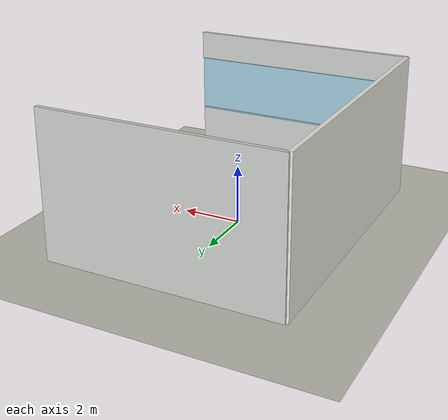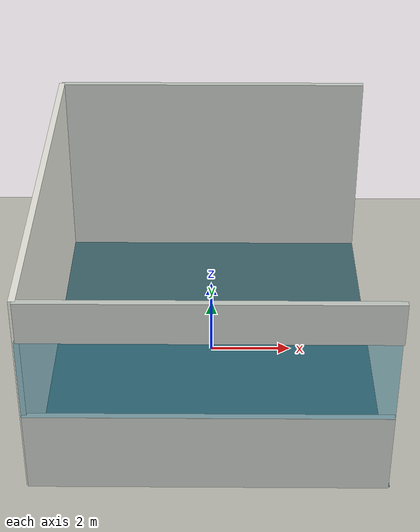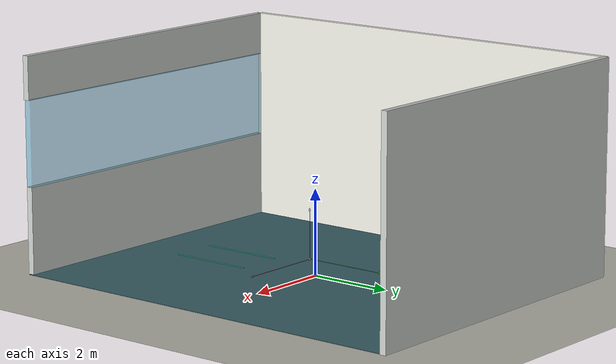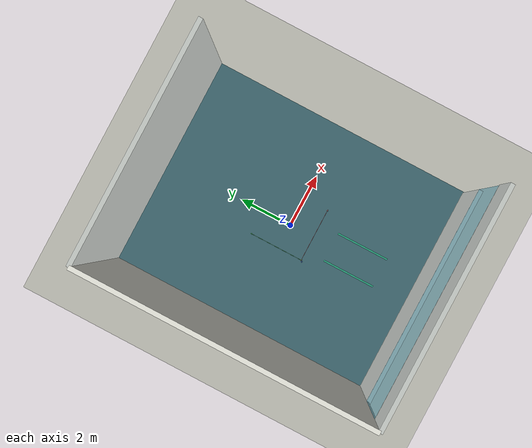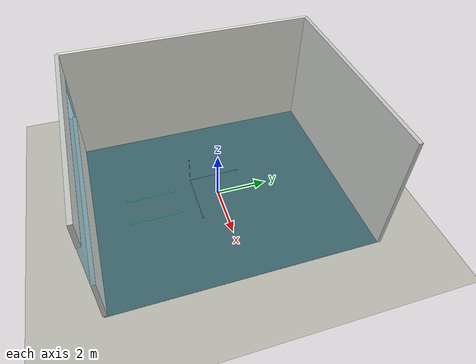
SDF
<sdf version="1.10">
 <world name="laboratory_landingbox_vla_task0">
  <model name="debug_world_axes">
   <static>true</static>
   <pose>-0.92000000000000004 -0.92000000000000004 0 0 0 0</pose>
   <link name="axes_link">
    <visual name="origin_dot">
     <pose>0 0 0.055 0 0 0</pose>
     <geometry><sphere><radius>0.028000000000000001</radius></sphere></geometry>
     <material>
      <ambient>0.75 0.649999976 0.150000006 0.550000012</ambient>
      <diffuse>0.75 0.649999976 0.150000006 0.550000012</diffuse>
      <emissive>0.0799999982 0.0599999987 0 1</emissive>
     </material>
     <transparency>0.10000000000000001</transparency>
     <cast_shadows>false</cast_shadows>
    </visual>
    <visual name="x_axis_red_line">
     <pose>1 0 0.055 3.1415926535897931 1.5707926536359933 3.1415926535897931</pose>
     <geometry><cylinder><radius>0.0060000000000000001</radius><length>2</length></cylinder></geometry>
     <material>
      <ambient>0.75 0.100000001 0.100000001 0.449999988</ambient>
      <diffuse>0.75 0.100000001 0.100000001 0.449999988</diffuse>
      <emissive>0.0399999991 0 0 1</emissive>
     </material>
     <transparency>0.10000000000000001</transparency>
     <cast_shadows>false</cast_shadows>
    </visual>
    <visual name="x_axis_tip">
     <pose>2.04 0 0.055 3.1415926535897931 1.5707926536359933 3.1415926535897931</pose>
     <geometry><cone><radius>0.025999999999999999</radius><length>0.080000000000000002</length></cone></geometry>
     <material>
      <ambient>0.75 0.100000001 0.100000001 0.449999988</ambient>
      <diffuse>0.75 0.100000001 0.100000001 0.449999988</diffuse>
      <emissive>0.0399999991 0 0 1</emissive>
     </material>
     <transparency>0.10000000000000001</transparency>
     <cast_shadows>false</cast_shadows>
    </visual>
    <visual name="y_axis_green_line">
     <pose>0 1 0.065000000000000002 -1.5708 0 0</pose>
     <geometry><cylinder><radius>0.0060000000000000001</radius><length>2</length></cylinder></geometry>
     <material>
      <ambient>0.100000001 0.649999976 0.100000001 0.449999988</ambient>
      <diffuse>0.100000001 0.649999976 0.100000001 0.449999988</diffuse>
      <emissive>0 0.0399999991 0 1</emissive>
     </material>
     <transparency>0.10000000000000001</transparency>
     <cast_shadows>false</cast_shadows>
    </visual>
    <visual name="y_axis_tip">
     <pose>0 2.04 0.065000000000000002 -1.5708 0 0</pose>
     <geometry><cone><radius>0.025999999999999999</radius><length>0.080000000000000002</length></cone></geometry>
     <material>
      <ambient>0.100000001 0.649999976 0.100000001 0.449999988</ambient>
      <diffuse>0.100000001 0.649999976 0.100000001 0.449999988</diffuse>
      <emissive>0 0.0399999991 0 1</emissive>
     </material>
     <transparency>0.10000000000000001</transparency>
     <cast_shadows>false</cast_shadows>
    </visual>
    <visual name="z_axis_blue_line">
     <pose>0 0 0.59999999999999998 0 0 0</pose>
     <geometry><cylinder><radius>0.0060000000000000001</radius><length>1.2</length></cylinder></geometry>
     <material>
      <ambient>0.100000001 0.200000003 0.800000012 0.449999988</ambient>
      <diffuse>0.100000001 0.200000003 0.800000012 0.449999988</diffuse>
      <emissive>0 0 0.0500000007 1</emissive>
     </material>
     <transparency>0.10000000000000001</transparency>
     <cast_shadows>false</cast_shadows>
    </visual>
    <visual name="z_axis_tip">
     <pose>0 0 1.24 0 0 0</pose>
     <geometry><cone><radius>0.025999999999999999</radius><length>0.080000000000000002</length></cone></geometry>
     <material>
      <ambient>0.100000001 0.200000003 0.800000012 0.449999988</ambient>
      <diffuse>0.100000001 0.200000003 0.800000012 0.449999988</diffuse>
      <emissive>0 0 0.0500000007 1</emissive>
     </material>
     <transparency>0.10000000000000001</transparency>
     <cast_shadows>false</cast_shadows>
    </visual>
    <inertial>
     <mass>1</mass>
     <inertia><ixx>1</ixx><ixy>0</ixy><ixz>0</ixz><iyy>1</iyy><iyz>0</iyz><izz>1</izz></inertia>
    </inertial>
   </link>
  </model>
  <model name="ground_plane">
   <static>true</static>
   <link name="link">
    <collision name="collision">
     <geometry><plane><normal>0 0 1</normal><size>500 500</size></plane></geometry>
     <surface><friction><ode><mu>100</mu><mu2>50</mu2></ode></friction></surface>
    </collision>
    <visual name="visual">
     <geometry><plane><normal>0 0 1</normal><size>500 500</size></plane></geometry>
     <material>
      <ambient>0.74000001 0.74000001 0.699999988 1</ambient>
      <diffuse>0.74000001 0.74000001 0.699999988 1</diffuse>
      <specular>0.0500000007 0.0500000007 0.0500000007 1</specular>
     </material>
    </visual>
    <inertial>
     <mass>1</mass>
     <inertia><ixx>1</ixx><ixy>0</ixy><ixz>0</ixz><iyy>1</iyy><iyz>0</iyz><izz>1</izz></inertia>
    </inertial>
   </link>
  </model>
  <model name="window">
   <link name="link_2">
    <pose>-3.6558600000000001 -0.020996999999999998 0.36152899999999999 0 0 0</pose>
    <inertial>
     <mass>1</mass>
     <inertia><ixx>1</ixx><ixy>0</ixy><ixz>0</ixz><iyy>1</iyy><iyz>0</iyz><izz>1</izz></inertia>
    </inertial>
    <visual name="visual">
     <pose>0 0 0.90000000000000002 0 0 0</pose>
     <geometry><box><size>8 0.14999999999999999 2</size></box></geometry>
     <material>
      <lighting>true</lighting>
      <ambient>0.200000003 0.5 0.600000024 0.699999988</ambient>
      <diffuse>0.219999999 0.620000005 0.75 0.699999988</diffuse>
      <specular>0.180000007 0.180000007 0.180000007 1</specular>
      <emissive>0.0199999996 0.0599999987 0.0799999982 1</emissive>
     </material>
     <transparency>0.55000000000000004</transparency>
    </visual>
    <collision name="collision">
     <pose>0 0 0.90000000000000002 0 0 0</pose>
     <geometry><box><size>8 0.14999999999999999 2</size></box></geometry>
     <surface>
      <friction>
       <ode><mu>1</mu><mu2>1</mu2><fdir1>0 0 0</fdir1><slip1>0</slip1><slip2>0</slip2></ode>
       <torsional>
        <coefficient>1</coefficient>
        <patch_radius>0</patch_radius>
        <surface_radius>0</surface_radius>
        <use_patch_radius>true</use_patch_radius>
        <ode><slip>0</slip></ode>
       </torsional>
      </friction>
      <bounce><restitution_coefficient>0</restitution_coefficient><threshold>1000000</threshold></bounce>
      <contact>
       <collide_without_contact>false</collide_without_contact>
       <collide_without_contact_bitmask>1</collide_without_contact_bitmask>
       <collide_bitmask>1</collide_bitmask>
       <ode>
        <soft_cfm>0</soft_cfm>
        <soft_erp>0.20000000000000001</soft_erp>
        <kp>10000000000000</kp>
        <kd>1</kd>
        <max_vel>0.01</max_vel>
        <min_depth>0</min_depth>
       </ode>
       <bullet>
        <split_impulse>true</split_impulse>
        <split_impulse_penetration_threshold>-0.01</split_impulse_penetration_threshold>
        <soft_cfm>0</soft_cfm>
        <soft_erp>0.20000000000000001</soft_erp>
        <kp>10000000000000</kp>
        <kd>1</kd>
       </bullet>
      </contact>
     </surface>
    </collision>
   </link>
   <static>true</static>
   <pose>3.62277 -4.97689 1.7565 0 0 0</pose>
  </model>
  <model name="Workshop">
   <link name="Wall_10">
    <pose>-2.5053000000000001 2.09449 2 0 0 -1.5708</pose>
    <inertial>
     <mass>1</mass>
     <inertia><ixx>1</ixx><ixy>0</ixy><ixz>0</ixz><iyy>1</iyy><iyz>0</iyz><izz>1</izz></inertia>
    </inertial>
    <visual name="Wall_10_Visual">
     <pose>0 0 0.5 0 0 0</pose>
     <geometry><box><size>10 0.14999999999999999 5</size></box></geometry>
     <material>
      <ambient>0.879999995 0.879999995 0.839999974 1</ambient>
      <diffuse>0.920000017 0.920000017 0.879999995 1</diffuse>
      <specular>0.0199999996 0.0199999996 0.0199999996 1</specular>
      <emissive>0 0 0 1</emissive>
     </material>
    </visual>
    <collision name="Wall_10_Collision">
     <pose>0 0 0.5 0 0 0</pose>
     <geometry><box><size>10 0.14999999999999999 5</size></box></geometry>
     <surface>
      <friction>
       <ode><mu>1</mu><mu2>1</mu2><fdir1>0 0 0</fdir1><slip1>0</slip1><slip2>0</slip2></ode>
       <torsional>
        <coefficient>1</coefficient>
        <patch_radius>0</patch_radius>
        <surface_radius>0</surface_radius>
        <use_patch_radius>true</use_patch_radius>
        <ode><slip>0</slip></ode>
       </torsional>
      </friction>
      <bounce><restitution_coefficient>0</restitution_coefficient><threshold>1000000</threshold></bounce>
      <contact>
       <collide_without_contact>false</collide_without_contact>
       <collide_without_contact_bitmask>1</collide_without_contact_bitmask>
       <collide_bitmask>1</collide_bitmask>
       <ode>
        <soft_cfm>0</soft_cfm>
        <soft_erp>0.20000000000000001</soft_erp>
        <kp>10000000000000</kp>
        <kd>1</kd>
        <max_vel>0.01</max_vel>
        <min_depth>0</min_depth>
       </ode>
       <bullet>
        <split_impulse>true</split_impulse>
        <split_impulse_penetration_threshold>-0.01</split_impulse_penetration_threshold>
        <soft_cfm>0</soft_cfm>
        <soft_erp>0.20000000000000001</soft_erp>
        <kp>10000000000000</kp>
        <kd>1</kd>
       </bullet>
      </contact>
     </surface>
    </collision>
   </link>
   <link name="Wall_11">
    <pose>1.4613100000000037 -2.9050699999999958 0.51611300000000004 0 0 3.1415900000000008</pose>
    <inertial>
     <inertia><ixx>1</ixx><ixy>0</ixy><ixz>0</ixz><iyy>1</iyy><iyz>0</iyz><izz>1</izz></inertia>
     <mass>1</mass>
    </inertial>
    <visual name="Wall_11_Visual">
     <pose>0 0 0.5 0 0 0</pose>
     <geometry><box><size>8 0.14999999999999999 2</size></box></geometry>
     <material>
      <ambient>0.720000029 0.74000001 0.720000029 1</ambient>
      <emissive>0 0 0 1</emissive>
      <diffuse>0.779999971 0.800000012 0.779999971 1</diffuse>
      <specular>0.0199999996 0.0199999996 0.0199999996 1</specular>
     </material>
    </visual>
    <collision name="Wall_11_Collision">
     <pose>0 0 0.5 0 0 0</pose>
     <geometry><box><size>8 0.14999999999999999 2</size></box></geometry>
     <surface>
      <friction>
       <ode><mu>1</mu><mu2>1</mu2><fdir1>0 0 0</fdir1><slip1>0</slip1><slip2>0</slip2></ode>
       <torsional>
        <coefficient>1</coefficient>
        <patch_radius>0</patch_radius>
        <surface_radius>0</surface_radius>
        <use_patch_radius>true</use_patch_radius>
        <ode><slip>0</slip></ode>
       </torsional>
      </friction>
      <bounce><restitution_coefficient>0</restitution_coefficient><threshold>1000000</threshold></bounce>
      <contact>
       <collide_without_contact>false</collide_without_contact>
       <collide_without_contact_bitmask>1</collide_without_contact_bitmask>
       <collide_bitmask>1</collide_bitmask>
       <ode>
        <soft_cfm>0</soft_cfm>
        <soft_erp>0.20000000000000001</soft_erp>
        <kp>10000000000000</kp>
        <kd>1</kd>
        <max_vel>0.01</max_vel>
        <min_depth>0</min_depth>
       </ode>
       <bullet>
        <split_impulse>true</split_impulse>
        <split_impulse_penetration_threshold>-0.01</split_impulse_penetration_threshold>
        <soft_cfm>0</soft_cfm>
        <soft_erp>0.20000000000000001</soft_erp>
        <kp>10000000000000</kp>
        <kd>1</kd>
       </bullet>
      </contact>
     </surface>
    </collision>
   </link>
   <link name="Wall_11_clone">
    <pose>1.4947000000000032 -2.905509999999996 4 0 0 3.1415900000000008</pose>
    <inertial>
     <inertia><ixx>1</ixx><ixy>0</ixy><ixz>0</ixz><iyy>1</iyy><iyz>0</iyz><izz>1</izz></inertia>
     <mass>1</mass>
    </inertial>
    <visual name="Wall_11_Visual">
     <pose>0 0 0.5 0 0 0</pose>
     <geometry><box><size>8 0.14999999999999999 1</size></box></geometry>
     <material>
      <ambient>0.720000029 0.74000001 0.720000029 1</ambient>
      <emissive>0 0 0 1</emissive>
      <diffuse>0.779999971 0.800000012 0.779999971 1</diffuse>
      <specular>0.0199999996 0.0199999996 0.0199999996 1</specular>
     </material>
    </visual>
    <collision name="Wall_11_Collision">
     <pose>0 0 0.5 0 0 0</pose>
     <geometry><box><size>7.7121700000000004 0.14999999999999999 1</size></box></geometry>
     <surface>
      <friction>
       <ode><mu>1</mu><mu2>1</mu2><fdir1>0 0 0</fdir1><slip1>0</slip1><slip2>0</slip2></ode>
       <torsional>
        <coefficient>1</coefficient>
        <patch_radius>0</patch_radius>
        <surface_radius>0</surface_radius>
        <use_patch_radius>true</use_patch_radius>
        <ode><slip>0</slip></ode>
       </torsional>
      </friction>
      <bounce><restitution_coefficient>0</restitution_coefficient><threshold>1000000</threshold></bounce>
      <contact>
       <collide_without_contact>false</collide_without_contact>
       <collide_without_contact_bitmask>1</collide_without_contact_bitmask>
       <collide_bitmask>1</collide_bitmask>
       <ode>
        <soft_cfm>0</soft_cfm>
        <soft_erp>0.20000000000000001</soft_erp>
        <kp>10000000000000</kp>
        <kd>1</kd>
        <max_vel>0.01</max_vel>
        <min_depth>0</min_depth>
       </ode>
       <bullet>
        <split_impulse>true</split_impulse>
        <split_impulse_penetration_threshold>-0.01</split_impulse_penetration_threshold>
        <soft_cfm>0</soft_cfm>
        <soft_erp>0.20000000000000001</soft_erp>
        <kp>10000000000000</kp>
        <kd>1</kd>
       </bullet>
      </contact>
     </surface>
    </collision>
   </link>
   <link name="Wall_13">
    <pose>1.4946999999999955 7.0944900000000031 2 0 0 3.1415900000000008</pose>
    <inertial>
     <mass>1</mass>
     <inertia><ixx>1</ixx><ixy>0</ixy><ixz>0</ixz><iyy>1</iyy><iyz>0</iyz><izz>1</izz></inertia>
    </inertial>
    <visual name="Wall_13_Visual">
     <pose>0 0 0.5 0 0 0</pose>
     <geometry><box><size>8 0.14999999999999999 5</size></box></geometry>
     <material>
      <ambient>0.720000029 0.74000001 0.720000029 1</ambient>
      <diffuse>0.779999971 0.800000012 0.779999971 1</diffuse>
      <specular>0.0199999996 0.0199999996 0.0199999996 1</specular>
      <emissive>0 0 0 1</emissive>
     </material>
    </visual>
    <collision name="Wall_13_Collision">
     <pose>0 0 0.5 0 0 0</pose>
     <geometry><box><size>8 0.14999999999999999 5</size></box></geometry>
     <surface>
      <friction>
       <ode><mu>1</mu><mu2>1</mu2><fdir1>0 0 0</fdir1><slip1>0</slip1><slip2>0</slip2></ode>
       <torsional>
        <coefficient>1</coefficient>
        <patch_radius>0</patch_radius>
        <surface_radius>0</surface_radius>
        <use_patch_radius>true</use_patch_radius>
        <ode><slip>0</slip></ode>
       </torsional>
      </friction>
      <bounce><restitution_coefficient>0</restitution_coefficient><threshold>1000000</threshold></bounce>
      <contact>
       <collide_without_contact>false</collide_without_contact>
       <collide_without_contact_bitmask>1</collide_without_contact_bitmask>
       <collide_bitmask>1</collide_bitmask>
       <ode>
        <soft_cfm>0</soft_cfm>
        <soft_erp>0.20000000000000001</soft_erp>
        <kp>10000000000000</kp>
        <kd>1</kd>
        <max_vel>0.01</max_vel>
        <min_depth>0</min_depth>
       </ode>
       <bullet>
        <split_impulse>true</split_impulse>
        <split_impulse_penetration_threshold>-0.01</split_impulse_penetration_threshold>
        <soft_cfm>0</soft_cfm>
        <soft_erp>0.20000000000000001</soft_erp>
        <kp>10000000000000</kp>
        <kd>1</kd>
       </bullet>
      </contact>
     </surface>
    </collision>
   </link>
   <link name="link_0">
    <inertial>
     <mass>1</mass>
     <inertia>
      <ixx>0.16666700000000001</ixx>
      <ixy>0</ixy>
      <ixz>0</ixz>
      <iyy>0.16666700000000001</iyy>
      <iyz>0</iyz>
      <izz>0.16666700000000001</izz>
     </inertia>
    </inertial>
    <pose>1.4928199999999996 2.0619100000000032 0.012848 0 0 -1.5707999999999998</pose>
    <visual name="visual">
     <geometry><box><size>10 8 0.012999999999999999</size></box></geometry>
     <material>
      <lighting>true</lighting>
      <ambient>0.200000003 0.330000013 0.360000014 1</ambient>
      <diffuse>0.239999995 0.400000006 0.430000007 1</diffuse>
      <specular>0.0199999996 0.0199999996 0.0199999996 1</specular>
      <emissive>0 0 0 1</emissive>
     </material>
    </visual>
    <collision name="collision"><geometry><box><size>10 8 0.012999999999999999</size></box></geometry></collision>
   </link>
   <static>true</static>
   <pose>-1.4947000000000017 -2.0944900000000017 0 0 0 -7.7715611723760958e-16</pose>
  </model>
  <model name="clearance_lane_left">
   <static>true</static>
   <pose>-0.55000000000000004 -2.6499999999999999 0.025999999999999999 0 0 0</pose>
   <link name="link">
    <visual name="visual">
     <geometry><box><size>0.059999999999999998 2 0.0050000000000000001</size></box></geometry>
     <material>
      <ambient>0.180000007 0.75 0.550000012 1</ambient>
      <diffuse>0.180000007 0.75 0.550000012 1</diffuse>
      <specular>0.0199999996 0.0199999996 0.0199999996 1</specular>
     </material>
     <transparency>0.25</transparency>
     <cast_shadows>false</cast_shadows>
    </visual>
    <inertial>
     <mass>1</mass>
     <inertia><ixx>1</ixx><ixy>0</ixy><ixz>0</ixz><iyy>1</iyy><iyz>0</iyz><izz>1</izz></inertia>
    </inertial>
   </link>
  </model>
  <model name="clearance_lane_right">
   <static>true</static>
   <pose>0.55000000000000004 -2.6499999999999999 0.025999999999999999 0 0 0</pose>
   <link name="link">
    <visual name="visual">
     <geometry><box><size>0.059999999999999998 2 0.0050000000000000001</size></box></geometry>
     <material>
      <ambient>0.180000007 0.75 0.550000012 1</ambient>
      <diffuse>0.180000007 0.75 0.550000012 1</diffuse>
      <specular>0.0199999996 0.0199999996 0.0199999996 1</specular>
     </material>
     <transparency>0.25</transparency>
     <cast_shadows>false</cast_shadows>
    </visual>
    <inertial>
     <mass>1</mass>
     <inertia><ixx>1</ixx><ixy>0</ixy><ixz>0</ixz><iyy>1</iyy><iyz>0</iyz><izz>1</izz></inertia>
    </inertial>
   </link>
  </model>
 </world>
</sdf>
